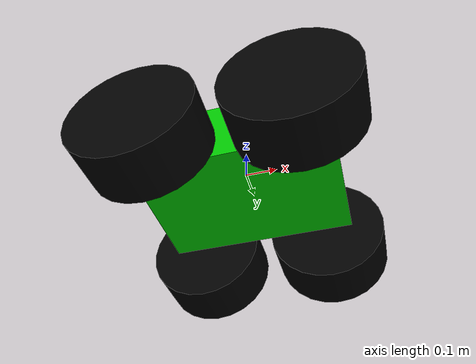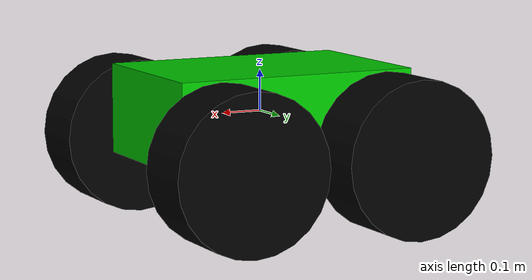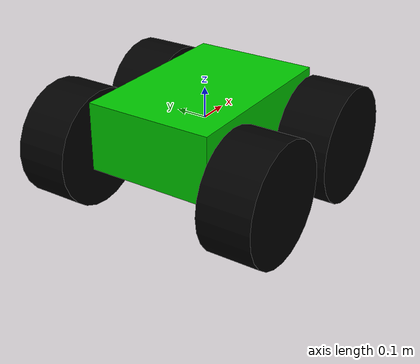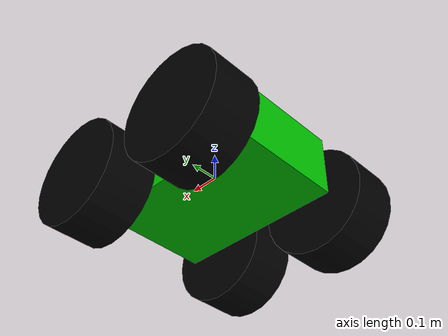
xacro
<?xml version="1.0"?>
<robot xmlns:xacro="http://www.ros.org/wiki/xacro" name="smb">

	<!-- Includes -->
	 <xacro:include filename="$(find smb_description)/urdf/smb_controller.gazebo.xacro"/>
	 <xacro:include filename="$(find smb_description)/urdf/smb.urdf.xacro" />

        <!-- Arguments -->
        <xacro:arg name="wheel_joint_type"          default="fixed"/> <!-- continuous for gazebo -->

	<!-- Global Properties -->
	<!--xacro:property name="robot_name" value="smb"/-->

	<xacro:smb wheel_joint_type="$(arg wheel_joint_type)"/>

</robot>

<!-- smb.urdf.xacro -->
<robot xmlns:xacro="http://www.ros.org/wiki/xacro" name="smb">

    <xacro:include filename="$(find smb_description)/urdf/smb_utils.urdf.xacro" />

    <xacro:property name="PI" value="3.1415926535897931"/>
    <xacro:property name="robot_name" value="smb"/>

    <xacro:property name="chassisHeight" value="0.22"/>
    <xacro:property name="chassisLength" value="0.605"/>
    <xacro:property name="chassisWidth" value="0.410"/>
    <xacro:property name="chassisMass" value="40"/>

    <xacro:property name="wheelWidth" value="0.17"/>
    <xacro:property name="wheelRadius" value="0.19"/>
    <xacro:property name="frontWheelX" value="0.2159"/>
    <xacro:property name="backWheelX" value="-0.2159"/>
    <xacro:property name="wheelClearance" value="0.03"/>
    <xacro:property name="wheelHeight" value="0.08"/>
    <xacro:property name="wheelMass" value="5"/>

    <!-- Model macros -->
    <xacro:macro name="wheel" params="prefix X Y wheel_joint_type">
        <joint name="${prefix}_WHEEL" type="${wheel_joint_type}">
            <parent link="base"/>
            <child link="${prefix}_WHEEL"/>
            <origin xyz="${X} ${Y} ${-wheelHeight}" rpy="${0.5*PI} 0 0" />
            <axis xyz="0 0 -1" rpy="0 0 0" />
            <dynamics damping="1.0" friction="0.0"/>
            <limit effort="1" velocity="1"/>
            <joint_properties damping="0.2" friction="0.2"/>
        </joint>

        <link name="${prefix}_WHEEL">
            <collision>
                <origin xyz="0 0 0" rpy="0 0 0" />
                <geometry>
                    <cylinder length="${wheelWidth}" radius="${wheelRadius}"/>
                </geometry>
            </collision>
            <visual>
                <origin xyz="0 0 0" rpy="0 0 0" />
                <geometry>
                    <cylinder length="${wheelWidth}" radius="${wheelRadius}"/>
                </geometry>
                <material name="black"/>
            </visual>
            <inertial>
                <origin xyz="0 0 0" rpy="0 0 0" />
                <mass value="${wheelMass}"/>
                <cylinder_inertia m="${wheelMass}" r="${wheelRadius}" h="${wheelWidth}"/>
            </inertial>
        </link>

        <gazebo reference="${prefix}_WHEEL">
            <mu1 value="10"/>
            <mu2 value="0.1"/>
            <fdir1 value="1 0 0"/>
            <kp>10000000.0</kp>
            <kd>1.0</kd>
            <minDepth>0.005</minDepth>
            <maxVel>100.0</maxVel>
            <material>Gazebo/Black</material>
        </gazebo>
    </xacro:macro>

    <xacro:macro name="chassis">

        <link name="base">
            <collision>
                <origin xyz="0 0 0" rpy="0 0 0"/>
                <geometry>
                    <box size="${chassisLength} ${chassisWidth} ${chassisHeight}"/>
                </geometry>
            </collision>
            <visual>
                <origin xyz="0 0 0" rpy="0 0 0"/>
                <geometry>
                    <box size="${chassisLength} ${chassisWidth} ${chassisHeight}"/>
                </geometry>
                <material name="green"/>
            </visual>
        </link>

        <gazebo reference="base">
            <material>Gazebo/Green</material>
        </gazebo>

    <!-- Fixed joint to add dummy inertia link -->
    <joint name="base_to_base_inertia" type="fixed">
      <parent link="base"/>
      <child link="base_inertia"/>
      <origin xyz="0 0 0" rpy="0 0 0"/>
    </joint>

    <!-- Dummy inertia link, because KDL cannot have inertia on the base link -->
    <link name="base_inertia">
      <inertial>
        <origin xyz="0 0 0" rpy="0 0 0"/>
        <mass value="${chassisMass}"/>
        <box_inertia m="${chassisMass}"
                     x="${chassisLength}"
                     y="${chassisWidth}"
                     z="${chassisHeight}"/>
      </inertial>
    </link>

    </xacro:macro>

    <xacro:macro name="smb" params="wheel_joint_type=continuous">
        <chassis/>

        <wheel prefix="LF" X="${frontWheelX}"
            Y="${chassisWidth/2+wheelClearance+wheelWidth/2}"
            wheel_joint_type="${wheel_joint_type}" />

        <wheel prefix="RF" X="${frontWheelX}"
            Y="${-chassisWidth/2-wheelClearance-wheelWidth/2}"
            wheel_joint_type="${wheel_joint_type}" />

        <wheel prefix="LH" X="${backWheelX}"
            Y="${chassisWidth/2+wheelClearance+wheelWidth/2}"
	    wheel_joint_type="${wheel_joint_type}" />

        <wheel prefix="RH" X="${backWheelX}"
            Y="${-chassisWidth/2-wheelClearance-wheelWidth/2}"
            wheel_joint_type="${wheel_joint_type}" />
    </xacro:macro>
</robot>

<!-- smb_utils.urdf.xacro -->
<robot xmlns:xacro="http://www.ros.org/wiki/xacro">

    <!--   Inertia definitions -->
        <xacro:macro name="cylinder_inertia" params="m r h">
            <inertia
              ixx="${m*(3*r*r+h*h)/12}"
              ixy="0"
              ixz="0"
              iyy="${m*(3*r*r+h*h)/12}"
              iyz="0"
              izz="${m*r*r/2}"
            />
        </xacro:macro>
        <xacro:macro name="box_inertia" params="m x y z">
            <inertia
                ixx="${m*(y*y+z*z)/12}"
                ixy="0"
                ixz="0"
                iyy="${m*(x*x+z*z)/12}"
                iyz="0"
                izz="${m*(x*x+z*z)/12}"
            />
        </xacro:macro>
        <xacro:macro name="sphere_inertia" params="m r">
            <inertia
                ixx="${2*m*r*r/5}"
                ixy="0"
                ixz="0"
                iyy="${2*m*r*r/5}"
                iyz="0"
                izz="${2*m*r*r/5}"
            />
        </xacro:macro>

    <!-- Materials -->
        <material name="black">
            <color rgba="0 0 0 255"/>
        </material>
        <material name="blue">
            <color rgba="0 0 200 255"/>
        </material>
        <material name="green">
            <color rgba="0 200 0 255"/>
        </material>
        <material name="grey">
            <color rgba="50 50 50 255"/>
        </material>
        <material name="orange">
            <color rgba="255 108 10 255"/>
        </material>
        <material name="brown">
            <color rgba="222 207 195 255"/>
        </material>
        <material name="red">
            <color rgba="200 0 0 255"/>
        </material>
        <material name="white">
            <color rgba="255 255 255 255"/>
        </material>

  </robot>
